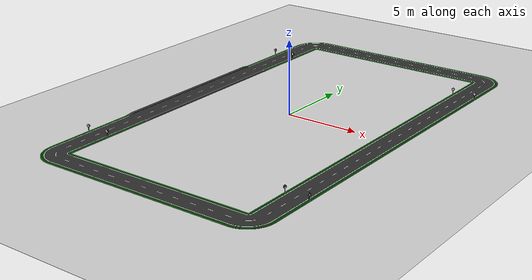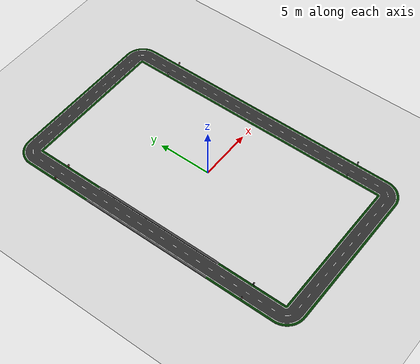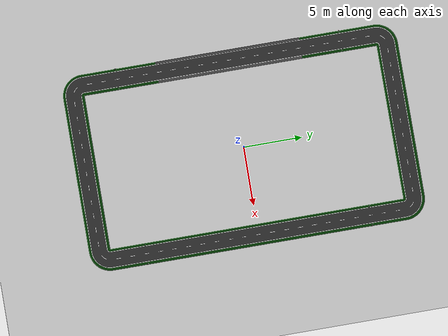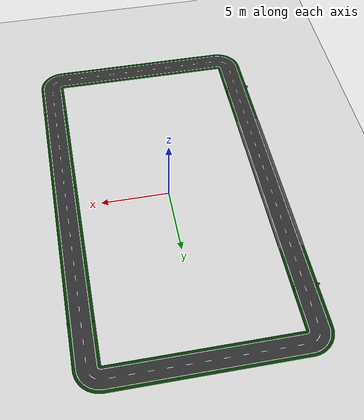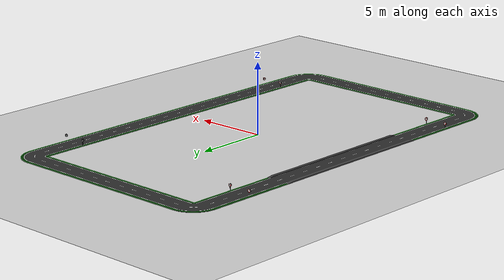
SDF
<sdf version="1.7">
 <world name="default">
  <light name="sun" type="directional">
   <pose>0 0 10 0 -0 0</pose>
   <diffuse>0.8 0.8 0.8 1</diffuse>
   <specular>0.2 0.2 0.2 1</specular>
   <attenuation>
    <range>1000</range>
    <constant>0.9</constant>
    <linear>0.01</linear>
    <quadratic>0.001</quadratic>
   </attenuation>
   <direction>-0.5 0.1 -0.9</direction>
   <spot><inner_angle>0</inner_angle><outer_angle>0</outer_angle><falloff>0</falloff></spot>
  </light>
  <model name="ground_plane">
   <static>1</static>
   <link name="link">
    <collision name="collision">
     <geometry><plane><normal>0 0 1</normal><size>100 100</size></plane></geometry>
     <surface>
      <contact><collide_bitmask>65535</collide_bitmask></contact>
      <friction><ode><mu>100</mu><mu2>50</mu2></ode></friction>
     </surface>
    </collision>
    <visual name="visual">
     <cast_shadows>0</cast_shadows>
     <geometry><plane><normal>0 0 1</normal><size>100 100</size></plane></geometry>
     <material>
      <script><uri>file://media/materials/scripts/gazebo.material</uri><name>Gazebo/Grey</name></script>
     </material>
    </visual>
   </link>
  </model>
  <gravity>0 0 -9.8</gravity>
  <magnetic_field>6e-06 2.3e-05 -4.2e-05</magnetic_field>
  <atmosphere type="adiabatic"/>
  <physics type="ode">
   <max_step_size>0.001</max_step_size>
   <real_time_factor>1</real_time_factor>
   <real_time_update_rate>1000</real_time_update_rate>
  </physics>
  <scene><ambient>0.4 0.4 0.4 1</ambient><background>0.7 0.7 0.7 1</background><shadows>1</shadows></scene>
  <spherical_coordinates>
   <surface_model>EARTH_WGS84</surface_model>
   <latitude_deg>0</latitude_deg>
   <longitude_deg>0</longitude_deg>
   <elevation>0</elevation>
   <heading_deg>0</heading_deg>
  </spherical_coordinates>
  <model name="SimpleEnvUnjoinedScaled">
   <link name="link_0">
    <inertial>
     <mass>1</mass>
     <inertia>
      <ixx>0.166667</ixx>
      <ixy>0</ixy>
      <ixz>0</ixz>
      <iyy>0.166667</iyy>
      <iyz>0</iyz>
      <izz>0.166667</izz>
     </inertia>
    </inertial>
    <visual name="visual">
     <geometry>
      <mesh>
       <uri>/home/ben/catkin_ws/src/bWeatherley/models/dae_exports/simple_environment/simple_environment.dae</uri>
       <scale>0.2 0.2 0.2</scale>
      </mesh>
     </geometry>
     <cast_shadows>0</cast_shadows>
    </visual>
    <collision name="collision">
     <geometry>
      <mesh>
       <uri>/home/ben/catkin_ws/src/bWeatherley/models/dae_exports/simple_environment/simple_environment.dae</uri>
       <scale>0.2 0.2 0.2</scale>
      </mesh>
     </geometry>
     <surface>
      <friction>
       <ode><mu>1</mu><mu2>1</mu2><fdir1>0 0 0</fdir1><slip1>0</slip1><slip2>0</slip2></ode>
       <torsional>
        <coefficient>1</coefficient>
        <patch_radius>0</patch_radius>
        <surface_radius>0</surface_radius>
        <use_patch_radius>1</use_patch_radius>
        <ode><slip>0</slip></ode>
       </torsional>
      </friction>
      <bounce><restitution_coefficient>0</restitution_coefficient><threshold>1e+06</threshold></bounce>
      <contact>
       <collide_without_contact>0</collide_without_contact>
       <collide_without_contact_bitmask>1</collide_without_contact_bitmask>
       <collide_bitmask>1</collide_bitmask>
       <ode>
        <soft_cfm>0</soft_cfm>
        <soft_erp>0.2</soft_erp>
        <kp>1e+13</kp>
        <kd>1</kd>
        <max_vel>0.01</max_vel>
        <min_depth>0</min_depth>
       </ode>
       <bullet>
        <split_impulse>1</split_impulse>
        <split_impulse_penetration_threshold>-0.01</split_impulse_penetration_threshold>
        <soft_cfm>0</soft_cfm>
        <soft_erp>0.2</soft_erp>
        <kp>1e+13</kp>
        <kd>1</kd>
       </bullet>
      </contact>
     </surface>
    </collision>
   </link>
   <static>1</static>
   <pose>0.001889 -0.000932 0 0 -0 0</pose>
  </model>
  <light name="user_point_light_0" type="point">
   <pose>-7.34444 -12.444 1 0 -0 0</pose>
   <diffuse>0.5 0.5 0.5 1</diffuse>
   <specular>0.1 0.1 0.1 1</specular>
   <attenuation>
    <range>20</range>
    <constant>0.5</constant>
    <linear>0.01</linear>
    <quadratic>0.001</quadratic>
   </attenuation>
   <cast_shadows>0</cast_shadows>
   <direction>0 0 -1</direction>
  </light>
  <light name="user_point_light_1" type="point">
   <pose>-2.3585 -13.5348 1 0 -0 0</pose>
   <diffuse>0.5 0.5 0.5 1</diffuse>
   <specular>0.1 0.1 0.1 1</specular>
   <attenuation>
    <range>20</range>
    <constant>0.5</constant>
    <linear>0.01</linear>
    <quadratic>0.001</quadratic>
   </attenuation>
   <cast_shadows>0</cast_shadows>
   <direction>0 0 -1</direction>
  </light>
  <light name="user_point_light_2" type="point">
   <pose>3.34503 -13.5742 1 0 -0 0</pose>
   <diffuse>0.5 0.5 0.5 1</diffuse>
   <specular>0.1 0.1 0.1 1</specular>
   <attenuation>
    <range>20</range>
    <constant>0.5</constant>
    <linear>0.01</linear>
    <quadratic>0.001</quadratic>
   </attenuation>
   <cast_shadows>0</cast_shadows>
   <direction>0 0 -1</direction>
  </light>
  <light name="user_point_light_3" type="point">
   <pose>7.38153 -11.6236 1 0 -0 0</pose>
   <diffuse>0.5 0.5 0.5 1</diffuse>
   <specular>0.1 0.1 0.1 1</specular>
   <attenuation>
    <range>20</range>
    <constant>0.5</constant>
    <linear>0.01</linear>
    <quadratic>0.001</quadratic>
   </attenuation>
   <cast_shadows>0</cast_shadows>
   <direction>0 0 -1</direction>
  </light>
  <light name="user_point_light_4" type="point">
   <pose>-7.24436 -7.14584 1 0 -0 0</pose>
   <diffuse>0.5 0.5 0.5 1</diffuse>
   <specular>0.1 0.1 0.1 1</specular>
   <attenuation>
    <range>20</range>
    <constant>0.5</constant>
    <linear>0.01</linear>
    <quadratic>0.001</quadratic>
   </attenuation>
   <cast_shadows>0</cast_shadows>
   <direction>0 0 -1</direction>
  </light>
  <light name="user_point_light_5" type="point">
   <pose>7.52736 -6.91573 1 0 -0 0</pose>
   <diffuse>0.5 0.5 0.5 1</diffuse>
   <specular>0.1 0.1 0.1 1</specular>
   <attenuation>
    <range>20</range>
    <constant>0.5</constant>
    <linear>0.01</linear>
    <quadratic>0.001</quadratic>
   </attenuation>
   <cast_shadows>0</cast_shadows>
   <direction>0 0 -1</direction>
  </light>
  <light name="user_point_light_6" type="point">
   <pose>-7.37222 0.49084 1 0 -0 0</pose>
   <diffuse>0.5 0.5 0.5 1</diffuse>
   <specular>0.1 0.1 0.1 1</specular>
   <attenuation>
    <range>20</range>
    <constant>0.5</constant>
    <linear>0.01</linear>
    <quadratic>0.001</quadratic>
   </attenuation>
   <cast_shadows>0</cast_shadows>
   <direction>0 0 -1</direction>
  </light>
  <light name="user_point_light_7" type="point">
   <pose>7.5879 0.311139 1 0 -0 0</pose>
   <diffuse>0.5 0.5 0.5 1</diffuse>
   <specular>0.1 0.1 0.1 1</specular>
   <attenuation>
    <range>20</range>
    <constant>0.5</constant>
    <linear>0.01</linear>
    <quadratic>0.001</quadratic>
   </attenuation>
   <cast_shadows>0</cast_shadows>
   <direction>0 0 -1</direction>
  </light>
  <light name="user_point_light_8" type="point">
   <pose>-7.4496 6.52074 1 0 -0 0</pose>
   <diffuse>0.5 0.5 0.5 1</diffuse>
   <specular>0.1 0.1 0.1 1</specular>
   <attenuation>
    <range>20</range>
    <constant>0.5</constant>
    <linear>0.01</linear>
    <quadratic>0.001</quadratic>
   </attenuation>
   <cast_shadows>0</cast_shadows>
   <direction>0 0 -1</direction>
  </light>
  <light name="user_point_light_9" type="point">
   <pose>7.57009 6.89037 1 0 -0 0</pose>
   <diffuse>0.5 0.5 0.5 1</diffuse>
   <specular>0.1 0.1 0.1 1</specular>
   <attenuation>
    <range>20</range>
    <constant>0.5</constant>
    <linear>0.01</linear>
    <quadratic>0.001</quadratic>
   </attenuation>
   <cast_shadows>0</cast_shadows>
   <direction>0 0 -1</direction>
  </light>
  <light name="user_point_light_10" type="point">
   <pose>-7.41946 12.2722 1 0 -0 0</pose>
   <diffuse>0.5 0.5 0.5 1</diffuse>
   <specular>0.1 0.1 0.1 1</specular>
   <attenuation>
    <range>20</range>
    <constant>0.5</constant>
    <linear>0.01</linear>
    <quadratic>0.001</quadratic>
   </attenuation>
   <cast_shadows>0</cast_shadows>
   <direction>0 0 -1</direction>
  </light>
  <light name="user_point_light_11" type="point">
   <pose>7.45996 11.9018 1 0 -0 0</pose>
   <diffuse>0.5 0.5 0.5 1</diffuse>
   <specular>0.1 0.1 0.1 1</specular>
   <attenuation>
    <range>20</range>
    <constant>0.5</constant>
    <linear>0.01</linear>
    <quadratic>0.001</quadratic>
   </attenuation>
   <cast_shadows>0</cast_shadows>
   <direction>0 0 -1</direction>
  </light>
  <light name="user_point_light_12" type="point">
   <pose>-2.48002 13.5387 1 0 -0 0</pose>
   <diffuse>0.5 0.5 0.5 1</diffuse>
   <specular>0.1 0.1 0.1 1</specular>
   <attenuation>
    <range>20</range>
    <constant>0.5</constant>
    <linear>0.01</linear>
    <quadratic>0.001</quadratic>
   </attenuation>
   <cast_shadows>0</cast_shadows>
   <direction>0 0 -1</direction>
  </light>
  <light name="user_point_light_13" type="point">
   <pose>3.72308 13.6638 1 0 -0 0</pose>
   <diffuse>0.5 0.5 0.5 1</diffuse>
   <specular>0.1 0.1 0.1 1</specular>
   <attenuation>
    <range>20</range>
    <constant>0.5</constant>
    <linear>0.01</linear>
    <quadratic>0.001</quadratic>
   </attenuation>
   <cast_shadows>0</cast_shadows>
   <direction>0 0 -1</direction>
  </light>
 </world>
</sdf>
